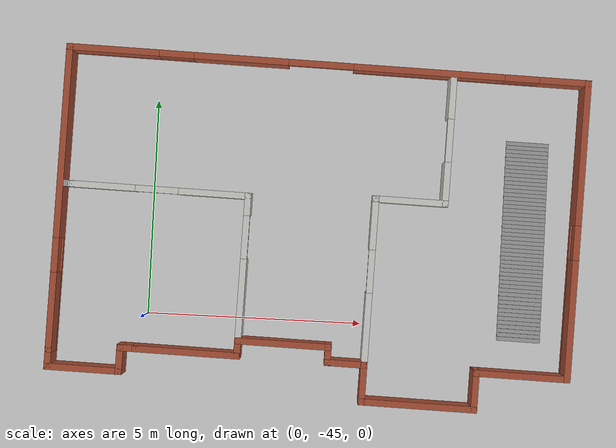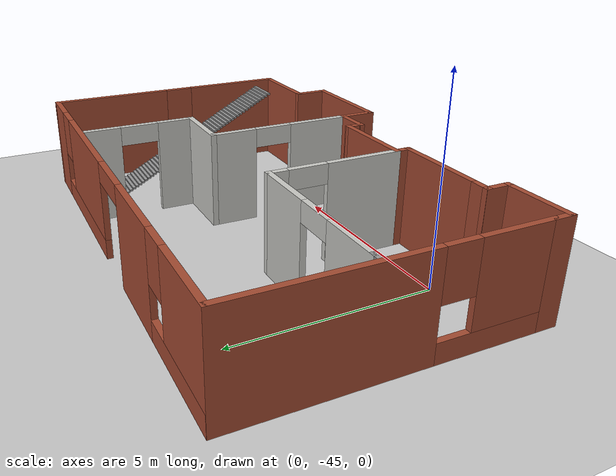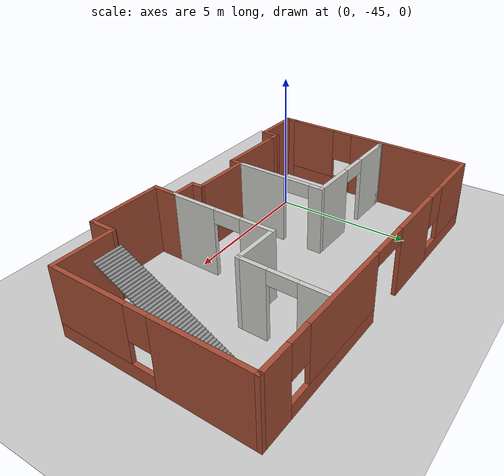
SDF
<sdf version="1.6">
 <world name="default">
  <model name="ground_plane">
   <static>1</static>
   <link name="link">
    <collision name="collision">
     <geometry><plane><normal>0 0 1</normal><size>100 100</size></plane></geometry>
     <surface><friction><ode><mu>100</mu><mu2>50</mu2></ode></friction></surface>
    </collision>
    <visual name="visual">
     <cast_shadows>0</cast_shadows>
     <geometry><plane><normal>0 0 1</normal><size>100 100</size></plane></geometry>
     <material>
      <script><uri>file://media/materials/scripts/gazebo.material</uri><name>Gazebo/Grey</name></script>
     </material>
    </visual>
   </link>
  </model>
  <model name="Multi_12_7home3_0">
   <pose>3.88175 -42.8713 0 0 -0 3.1211</pose>
   <link name="Stairs_5">
    <visual name="Stairs_5_Visual_0">
     <pose>-4.79994 -2.39706 0.025 0 0 -3.14159</pose>
     <geometry><box><size>1 0.093 0.05</size></box></geometry>
     <material>
      <script><uri>file://media/materials/scripts/gazebo.material</uri><name>Gazebo/Grey</name></script>
      <ambient>1 1 1 1</ambient>
     </material>
     <meta><layer>0</layer></meta>
    </visual>
    <collision name="Stairs_5_Collision_0">
     <geometry><box><size>1 0.093 0.05</size></box></geometry>
     <pose>-4.79994 -2.39706 0.025 0 0 -3.14159</pose>
    </collision>
    <visual name="Stairs_5_Visual_1">
     <pose>-4.79994 -2.30406 0.075 0 0 -3.14159</pose>
     <geometry><box><size>1 0.093 0.05</size></box></geometry>
     <material>
      <script><uri>file://media/materials/scripts/gazebo.material</uri><name>Gazebo/Grey</name></script>
      <ambient>1 1 1 1</ambient>
     </material>
     <meta><layer>0</layer></meta>
    </visual>
    <collision name="Stairs_5_Collision_1">
     <geometry><box><size>1 0.093 0.05</size></box></geometry>
     <pose>-4.79994 -2.30406 0.075 0 0 -3.14159</pose>
    </collision>
    <visual name="Stairs_5_Visual_2">
     <pose>-4.79994 -2.21106 0.125 0 0 -3.14159</pose>
     <geometry><box><size>1 0.093 0.05</size></box></geometry>
     <material>
      <script><uri>file://media/materials/scripts/gazebo.material</uri><name>Gazebo/Grey</name></script>
      <ambient>1 1 1 1</ambient>
     </material>
     <meta><layer>0</layer></meta>
    </visual>
    <collision name="Stairs_5_Collision_2">
     <geometry><box><size>1 0.093 0.05</size></box></geometry>
     <pose>-4.79994 -2.21106 0.125 0 0 -3.14159</pose>
    </collision>
    <visual name="Stairs_5_Visual_3">
     <pose>-4.79994 -2.11806 0.175 0 0 -3.14159</pose>
     <geometry><box><size>1 0.093 0.05</size></box></geometry>
     <material>
      <script><uri>file://media/materials/scripts/gazebo.material</uri><name>Gazebo/Grey</name></script>
      <ambient>1 1 1 1</ambient>
     </material>
     <meta><layer>0</layer></meta>
    </visual>
    <collision name="Stairs_5_Collision_3">
     <geometry><box><size>1 0.093 0.05</size></box></geometry>
     <pose>-4.79994 -2.11806 0.175 0 0 -3.14159</pose>
    </collision>
    <visual name="Stairs_5_Visual_4">
     <pose>-4.79994 -2.02506 0.225 0 0 -3.14159</pose>
     <geometry><box><size>1 0.093 0.05</size></box></geometry>
     <material>
      <script><uri>file://media/materials/scripts/gazebo.material</uri><name>Gazebo/Grey</name></script>
      <ambient>1 1 1 1</ambient>
     </material>
     <meta><layer>0</layer></meta>
    </visual>
    <collision name="Stairs_5_Collision_4">
     <geometry><box><size>1 0.093 0.05</size></box></geometry>
     <pose>-4.79994 -2.02506 0.225 0 0 -3.14159</pose>
    </collision>
    <visual name="Stairs_5_Visual_5">
     <pose>-4.79994 -1.93206 0.275 0 0 -3.14159</pose>
     <geometry><box><size>1 0.093 0.05</size></box></geometry>
     <material>
      <script><uri>file://media/materials/scripts/gazebo.material</uri><name>Gazebo/Grey</name></script>
      <ambient>1 1 1 1</ambient>
     </material>
     <meta><layer>0</layer></meta>
    </visual>
    <collision name="Stairs_5_Collision_5">
     <geometry><box><size>1 0.093 0.05</size></box></geometry>
     <pose>-4.79994 -1.93206 0.275 0 0 -3.14159</pose>
    </collision>
    <visual name="Stairs_5_Visual_6">
     <pose>-4.79994 -1.83906 0.325 0 0 -3.14159</pose>
     <geometry><box><size>1 0.093 0.05</size></box></geometry>
     <material>
      <script><uri>file://media/materials/scripts/gazebo.material</uri><name>Gazebo/Grey</name></script>
      <ambient>1 1 1 1</ambient>
     </material>
     <meta><layer>0</layer></meta>
    </visual>
    <collision name="Stairs_5_Collision_6">
     <geometry><box><size>1 0.093 0.05</size></box></geometry>
     <pose>-4.79994 -1.83906 0.325 0 0 -3.14159</pose>
    </collision>
    <visual name="Stairs_5_Visual_7">
     <pose>-4.79994 -1.74606 0.375 0 0 -3.14159</pose>
     <geometry><box><size>1 0.093 0.05</size></box></geometry>
     <material>
      <script><uri>file://media/materials/scripts/gazebo.material</uri><name>Gazebo/Grey</name></script>
      <ambient>1 1 1 1</ambient>
     </material>
     <meta><layer>0</layer></meta>
    </visual>
    <collision name="Stairs_5_Collision_7">
     <geometry><box><size>1 0.093 0.05</size></box></geometry>
     <pose>-4.79994 -1.74606 0.375 0 0 -3.14159</pose>
    </collision>
    <visual name="Stairs_5_Visual_8">
     <pose>-4.79994 -1.65306 0.425 0 0 -3.14159</pose>
     <geometry><box><size>1 0.093 0.05</size></box></geometry>
     <material>
      <script><uri>file://media/materials/scripts/gazebo.material</uri><name>Gazebo/Grey</name></script>
      <ambient>1 1 1 1</ambient>
     </material>
     <meta><layer>0</layer></meta>
    </visual>
    <collision name="Stairs_5_Collision_8">
     <geometry><box><size>1 0.093 0.05</size></box></geometry>
     <pose>-4.79994 -1.65306 0.425 0 0 -3.14159</pose>
    </collision>
    <visual name="Stairs_5_Visual_9">
     <pose>-4.79994 -1.56006 0.475 0 0 -3.14159</pose>
     <geometry><box><size>1 0.093 0.05</size></box></geometry>
     <material>
      <script><uri>file://media/materials/scripts/gazebo.material</uri><name>Gazebo/Grey</name></script>
      <ambient>1 1 1 1</ambient>
     </material>
     <meta><layer>0</layer></meta>
    </visual>
    <collision name="Stairs_5_Collision_9">
     <geometry><box><size>1 0.093 0.05</size></box></geometry>
     <pose>-4.79994 -1.56006 0.475 0 0 -3.14159</pose>
    </collision>
    <visual name="Stairs_5_Visual_10">
     <pose>-4.79994 -1.46706 0.525 0 0 -3.14159</pose>
     <geometry><box><size>1 0.093 0.05</size></box></geometry>
     <material>
      <script><uri>file://media/materials/scripts/gazebo.material</uri><name>Gazebo/Grey</name></script>
      <ambient>1 1 1 1</ambient>
     </material>
     <meta><layer>0</layer></meta>
    </visual>
    <collision name="Stairs_5_Collision_10">
     <geometry><box><size>1 0.093 0.05</size></box></geometry>
     <pose>-4.79994 -1.46706 0.525 0 0 -3.14159</pose>
    </collision>
    <visual name="Stairs_5_Visual_11">
     <pose>-4.79994 -1.37406 0.575 0 0 -3.14159</pose>
     <geometry><box><size>1 0.093 0.05</size></box></geometry>
     <material>
      <script><uri>file://media/materials/scripts/gazebo.material</uri><name>Gazebo/Grey</name></script>
      <ambient>1 1 1 1</ambient>
     </material>
     <meta><layer>0</layer></meta>
    </visual>
    <collision name="Stairs_5_Collision_11">
     <geometry><box><size>1 0.093 0.05</size></box></geometry>
     <pose>-4.79994 -1.37406 0.575 0 0 -3.14159</pose>
    </collision>
    <visual name="Stairs_5_Visual_12">
     <pose>-4.79994 -1.28106 0.625 0 0 -3.14159</pose>
     <geometry><box><size>1 0.093 0.05</size></box></geometry>
     <material>
      <script><uri>file://media/materials/scripts/gazebo.material</uri><name>Gazebo/Grey</name></script>
      <ambient>1 1 1 1</ambient>
     </material>
     <meta><layer>0</layer></meta>
    </visual>
    <collision name="Stairs_5_Collision_12">
     <geometry><box><size>1 0.093 0.05</size></box></geometry>
     <pose>-4.79994 -1.28106 0.625 0 0 -3.14159</pose>
    </collision>
    <visual name="Stairs_5_Visual_13">
     <pose>-4.79994 -1.18806 0.675 0 0 -3.14159</pose>
     <geometry><box><size>1 0.093 0.05</size></box></geometry>
     <material>
      <script><uri>file://media/materials/scripts/gazebo.material</uri><name>Gazebo/Grey</name></script>
      <ambient>1 1 1 1</ambient>
     </material>
     <meta><layer>0</layer></meta>
    </visual>
    <collision name="Stairs_5_Collision_13">
     <geometry><box><size>1 0.093 0.05</size></box></geometry>
     <pose>-4.79994 -1.18806 0.675 0 0 -3.14159</pose>
    </collision>
    <visual name="Stairs_5_Visual_14">
     <pose>-4.79994 -1.09506 0.725 0 0 -3.14159</pose>
     <geometry><box><size>1 0.093 0.05</size></box></geometry>
     <material>
      <script><uri>file://media/materials/scripts/gazebo.material</uri><name>Gazebo/Grey</name></script>
      <ambient>1 1 1 1</ambient>
     </material>
     <meta><layer>0</layer></meta>
    </visual>
    <collision name="Stairs_5_Collision_14">
     <geometry><box><size>1 0.093 0.05</size></box></geometry>
     <pose>-4.79994 -1.09506 0.725 0 0 -3.14159</pose>
    </collision>
    <visual name="Stairs_5_Visual_15">
     <pose>-4.79994 -1.00206 0.775 0 0 -3.14159</pose>
     <geometry><box><size>1 0.093 0.05</size></box></geometry>
     <material>
      <script><uri>file://media/materials/scripts/gazebo.material</uri><name>Gazebo/Grey</name></script>
      <ambient>1 1 1 1</ambient>
     </material>
     <meta><layer>0</layer></meta>
    </visual>
    <collision name="Stairs_5_Collision_15">
     <geometry><box><size>1 0.093 0.05</size></box></geometry>
     <pose>-4.79994 -1.00206 0.775 0 0 -3.14159</pose>
    </collision>
    <visual name="Stairs_5_Visual_16">
     <pose>-4.79994 -0.909056 0.825 0 0 -3.14159</pose>
     <geometry><box><size>1 0.093 0.05</size></box></geometry>
     <material>
      <script><uri>file://media/materials/scripts/gazebo.material</uri><name>Gazebo/Grey</name></script>
      <ambient>1 1 1 1</ambient>
     </material>
     <meta><layer>0</layer></meta>
    </visual>
    <collision name="Stairs_5_Collision_16">
     <geometry><box><size>1 0.093 0.05</size></box></geometry>
     <pose>-4.79994 -0.909056 0.825 0 0 -3.14159</pose>
    </collision>
    <visual name="Stairs_5_Visual_17">
     <pose>-4.79994 -0.816056 0.875 0 0 -3.14159</pose>
     <geometry><box><size>1 0.093 0.05</size></box></geometry>
     <material>
      <script><uri>file://media/materials/scripts/gazebo.material</uri><name>Gazebo/Grey</name></script>
      <ambient>1 1 1 1</ambient>
     </material>
     <meta><layer>0</layer></meta>
    </visual>
    <collision name="Stairs_5_Collision_17">
     <geometry><box><size>1 0.093 0.05</size></box></geometry>
     <pose>-4.79994 -0.816056 0.875 0 0 -3.14159</pose>
    </collision>
    <visual name="Stairs_5_Visual_18">
     <pose>-4.79994 -0.723056 0.925 0 0 -3.14159</pose>
     <geometry><box><size>1 0.093 0.05</size></box></geometry>
     <material>
      <script><uri>file://media/materials/scripts/gazebo.material</uri><name>Gazebo/Grey</name></script>
      <ambient>1 1 1 1</ambient>
     </material>
     <meta><layer>0</layer></meta>
    </visual>
    <collision name="Stairs_5_Collision_18">
     <geometry><box><size>1 0.093 0.05</size></box></geometry>
     <pose>-4.79994 -0.723056 0.925 0 0 -3.14159</pose>
    </collision>
    <visual name="Stairs_5_Visual_19">
     <pose>-4.79994 -0.630056 0.975 0 0 -3.14159</pose>
     <geometry><box><size>1 0.093 0.05</size></box></geometry>
     <material>
      <script><uri>file://media/materials/scripts/gazebo.material</uri><name>Gazebo/Grey</name></script>
      <ambient>1 1 1 1</ambient>
     </material>
     <meta><layer>0</layer></meta>
    </visual>
    <collision name="Stairs_5_Collision_19">
     <geometry><box><size>1 0.093 0.05</size></box></geometry>
     <pose>-4.79994 -0.630056 0.975 0 0 -3.14159</pose>
    </collision>
    <visual name="Stairs_5_Visual_20">
     <pose>-4.79994 -0.537056 1.025 0 0 -3.14159</pose>
     <geometry><box><size>1 0.093 0.05</size></box></geometry>
     <material>
      <script><uri>file://media/materials/scripts/gazebo.material</uri><name>Gazebo/Grey</name></script>
      <ambient>1 1 1 1</ambient>
     </material>
     <meta><layer>0</layer></meta>
    </visual>
    <collision name="Stairs_5_Collision_20">
     <geometry><box><size>1 0.093 0.05</size></box></geometry>
     <pose>-4.79994 -0.537056 1.025 0 0 -3.14159</pose>
    </collision>
    <visual name="Stairs_5_Visual_21">
     <pose>-4.79994 -0.444056 1.075 0 0 -3.14159</pose>
     <geometry><box><size>1 0.093 0.05</size></box></geometry>
     <material>
      <script><uri>file://media/materials/scripts/gazebo.material</uri><name>Gazebo/Grey</name></script>
      <ambient>1 1 1 1</ambient>
     </material>
     <meta><layer>0</layer></meta>
    </visual>
    <collision name="Stairs_5_Collision_21">
     <geometry><box><size>1 0.093 0.05</size></box></geometry>
     <pose>-4.79994 -0.444056 1.075 0 0 -3.14159</pose>
    </collision>
    <visual name="Stairs_5_Visual_22">
     <pose>-4.79994 -0.351056 1.125 0 0 -3.14159</pose>
     <geometry><box><size>1 0.093 0.05</size></box></geometry>
     <material>
      <script><uri>file://media/materials/scripts/gazebo.material</uri><name>Gazebo/Grey</name></script>
      <ambient>1 1 1 1</ambient>
     </material>
     <meta><layer>0</layer></meta>
    </visual>
    <collision name="Stairs_5_Collision_22">
     <geometry><box><size>1 0.093 0.05</size></box></geometry>
     <pose>-4.79994 -0.351056 1.125 0 0 -3.14159</pose>
    </collision>
    <visual name="Stairs_5_Visual_23">
     <pose>-4.79994 -0.258056 1.175 0 0 -3.14159</pose>
     <geometry><box><size>1 0.093 0.05</size></box></geometry>
     <material>
      <script><uri>file://media/materials/scripts/gazebo.material</uri><name>Gazebo/Grey</name></script>
      <ambient>1 1 1 1</ambient>
     </material>
     <meta><layer>0</layer></meta>
    </visual>
    <collision name="Stairs_5_Collision_23">
     <geometry><box><size>1 0.093 0.05</size></box></geometry>
     <pose>-4.79994 -0.258056 1.175 0 0 -3.14159</pose>
    </collision>
    <visual name="Stairs_5_Visual_24">
     <pose>-4.79994 -0.165056 1.225 0 0 -3.14159</pose>
     <geometry><box><size>1 0.093 0.05</size></box></geometry>
     <material>
      <script><uri>file://media/materials/scripts/gazebo.material</uri><name>Gazebo/Grey</name></script>
      <ambient>1 1 1 1</ambient>
     </material>
     <meta><layer>0</layer></meta>
    </visual>
    <collision name="Stairs_5_Collision_24">
     <geometry><box><size>1 0.093 0.05</size></box></geometry>
     <pose>-4.79994 -0.165056 1.225 0 0 -3.14159</pose>
    </collision>
    <visual name="Stairs_5_Visual_25">
     <pose>-4.79994 -0.072056 1.275 0 0 -3.14159</pose>
     <geometry><box><size>1 0.093 0.05</size></box></geometry>
     <material>
      <script><uri>file://media/materials/scripts/gazebo.material</uri><name>Gazebo/Grey</name></script>
      <ambient>1 1 1 1</ambient>
     </material>
     <meta><layer>0</layer></meta>
    </visual>
    <collision name="Stairs_5_Collision_25">
     <geometry><box><size>1 0.093 0.05</size></box></geometry>
     <pose>-4.79994 -0.072056 1.275 0 0 -3.14159</pose>
    </collision>
    <visual name="Stairs_5_Visual_26">
     <pose>-4.79994 0.020944 1.325 0 0 -3.14159</pose>
     <geometry><box><size>1 0.093 0.05</size></box></geometry>
     <material>
      <script><uri>file://media/materials/scripts/gazebo.material</uri><name>Gazebo/Grey</name></script>
      <ambient>1 1 1 1</ambient>
     </material>
     <meta><layer>0</layer></meta>
    </visual>
    <collision name="Stairs_5_Collision_26">
     <geometry><box><size>1 0.093 0.05</size></box></geometry>
     <pose>-4.79994 0.020944 1.325 0 0 -3.14159</pose>
    </collision>
    <visual name="Stairs_5_Visual_27">
     <pose>-4.79994 0.113944 1.375 0 0 -3.14159</pose>
     <geometry><box><size>1 0.093 0.05</size></box></geometry>
     <material>
      <script><uri>file://media/materials/scripts/gazebo.material</uri><name>Gazebo/Grey</name></script>
      <ambient>1 1 1 1</ambient>
     </material>
     <meta><layer>0</layer></meta>
    </visual>
    <collision name="Stairs_5_Collision_27">
     <geometry><box><size>1 0.093 0.05</size></box></geometry>
     <pose>-4.79994 0.113944 1.375 0 0 -3.14159</pose>
    </collision>
    <visual name="Stairs_5_Visual_28">
     <pose>-4.79994 0.206944 1.425 0 0 -3.14159</pose>
     <geometry><box><size>1 0.093 0.05</size></box></geometry>
     <material>
      <script><uri>file://media/materials/scripts/gazebo.material</uri><name>Gazebo/Grey</name></script>
      <ambient>1 1 1 1</ambient>
     </material>
     <meta><layer>0</layer></meta>
    </visual>
    <collision name="Stairs_5_Collision_28">
     <geometry><box><size>1 0.093 0.05</size></box></geometry>
     <pose>-4.79994 0.206944 1.425 0 0 -3.14159</pose>
    </collision>
    <visual name="Stairs_5_Visual_29">
     <pose>-4.79994 0.299944 1.475 0 0 -3.14159</pose>
     <geometry><box><size>1 0.093 0.05</size></box></geometry>
     <material>
      <script><uri>file://media/materials/scripts/gazebo.material</uri><name>Gazebo/Grey</name></script>
      <ambient>1 1 1 1</ambient>
     </material>
     <meta><layer>0</layer></meta>
    </visual>
    <collision name="Stairs_5_Collision_29">
     <geometry><box><size>1 0.093 0.05</size></box></geometry>
     <pose>-4.79994 0.299944 1.475 0 0 -3.14159</pose>
    </collision>
    <visual name="Stairs_5_Visual_30">
     <pose>-4.79994 0.392944 1.525 0 0 -3.14159</pose>
     <geometry><box><size>1 0.093 0.05</size></box></geometry>
     <material>
      <script><uri>file://media/materials/scripts/gazebo.material</uri><name>Gazebo/Grey</name></script>
      <ambient>1 1 1 1</ambient>
     </material>
     <meta><layer>0</layer></meta>
    </visual>
    <collision name="Stairs_5_Collision_30">
     <geometry><box><size>1 0.093 0.05</size></box></geometry>
     <pose>-4.79994 0.392944 1.525 0 0 -3.14159</pose>
    </collision>
    <visual name="Stairs_5_Visual_31">
     <pose>-4.79994 0.485944 1.575 0 0 -3.14159</pose>
     <geometry><box><size>1 0.093 0.05</size></box></geometry>
     <material>
      <script><uri>file://media/materials/scripts/gazebo.material</uri><name>Gazebo/Grey</name></script>
      <ambient>1 1 1 1</ambient>
     </material>
     <meta><layer>0</layer></meta>
    </visual>
    <collision name="Stairs_5_Collision_31">
     <geometry><box><size>1 0.093 0.05</size></box></geometry>
     <pose>-4.79994 0.485944 1.575 0 0 -3.14159</pose>
    </collision>
    <visual name="Stairs_5_Visual_32">
     <pose>-4.79994 0.578944 1.625 0 0 -3.14159</pose>
     <geometry><box><size>1 0.093 0.05</size></box></geometry>
     <material>
      <script><uri>file://media/materials/scripts/gazebo.material</uri><name>Gazebo/Grey</name></script>
      <ambient>1 1 1 1</ambient>
     </material>
     <meta><layer>0</layer></meta>
    </visual>
    <collision name="Stairs_5_Collision_32">
     <geometry><box><size>1 0.093 0.05</size></box></geometry>
     <pose>-4.79994 0.578944 1.625 0 0 -3.14159</pose>
    </collision>
    <visual name="Stairs_5_Visual_33">
     <pose>-4.79994 0.671944 1.675 0 0 -3.14159</pose>
     <geometry><box><size>1 0.093 0.05</size></box></geometry>
     <material>
      <script><uri>file://media/materials/scripts/gazebo.material</uri><name>Gazebo/Grey</name></script>
      <ambient>1 1 1 1</ambient>
     </material>
     <meta><layer>0</layer></meta>
    </visual>
    <collision name="Stairs_5_Collision_33">
     <geometry><box><size>1 0.093 0.05</size></box></geometry>
     <pose>-4.79994 0.671944 1.675 0 0 -3.14159</pose>
    </collision>
    <visual name="Stairs_5_Visual_34">
     <pose>-4.79994 0.764944 1.725 0 0 -3.14159</pose>
     <geometry><box><size>1 0.093 0.05</size></box></geometry>
     <material>
      <script><uri>file://media/materials/scripts/gazebo.material</uri><name>Gazebo/Grey</name></script>
      <ambient>1 1 1 1</ambient>
     </material>
     <meta><layer>0</layer></meta>
    </visual>
    <collision name="Stairs_5_Collision_34">
     <geometry><box><size>1 0.093 0.05</size></box></geometry>
     <pose>-4.79994 0.764944 1.725 0 0 -3.14159</pose>
    </collision>
    <visual name="Stairs_5_Visual_35">
     <pose>-4.79994 0.857944 1.775 0 0 -3.14159</pose>
     <geometry><box><size>1 0.093 0.05</size></box></geometry>
     <material>
      <script><uri>file://media/materials/scripts/gazebo.material</uri><name>Gazebo/Grey</name></script>
      <ambient>1 1 1 1</ambient>
     </material>
     <meta><layer>0</layer></meta>
    </visual>
    <collision name="Stairs_5_Collision_35">
     <geometry><box><size>1 0.093 0.05</size></box></geometry>
     <pose>-4.79994 0.857944 1.775 0 0 -3.14159</pose>
    </collision>
    <visual name="Stairs_5_Visual_36">
     <pose>-4.79994 0.950944 1.825 0 0 -3.14159</pose>
     <geometry><box><size>1 0.093 0.05</size></box></geometry>
     <material>
      <script><uri>file://media/materials/scripts/gazebo.material</uri><name>Gazebo/Grey</name></script>
      <ambient>1 1 1 1</ambient>
     </material>
     <meta><layer>0</layer></meta>
    </visual>
    <collision name="Stairs_5_Collision_36">
     <geometry><box><size>1 0.093 0.05</size></box></geometry>
     <pose>-4.79994 0.950944 1.825 0 0 -3.14159</pose>
    </collision>
    <visual name="Stairs_5_Visual_37">
     <pose>-4.79994 1.04394 1.875 0 0 -3.14159</pose>
     <geometry><box><size>1 0.093 0.05</size></box></geometry>
     <material>
      <script><uri>file://media/materials/scripts/gazebo.material</uri><name>Gazebo/Grey</name></script>
      <ambient>1 1 1 1</ambient>
     </material>
     <meta><layer>0</layer></meta>
    </visual>
    <collision name="Stairs_5_Collision_37">
     <geometry><box><size>1 0.093 0.05</size></box></geometry>
     <pose>-4.79994 1.04394 1.875 0 0 -3.14159</pose>
    </collision>
    <visual name="Stairs_5_Visual_38">
     <pose>-4.79994 1.13694 1.925 0 0 -3.14159</pose>
     <geometry><box><size>1 0.093 0.05</size></box></geometry>
     <material>
      <script><uri>file://media/materials/scripts/gazebo.material</uri><name>Gazebo/Grey</name></script>
      <ambient>1 1 1 1</ambient>
     </material>
     <meta><layer>0</layer></meta>
    </visual>
    <collision name="Stairs_5_Collision_38">
     <geometry><box><size>1 0.093 0.05</size></box></geometry>
     <pose>-4.79994 1.13694 1.925 0 0 -3.14159</pose>
    </collision>
    <visual name="Stairs_5_Visual_39">
     <pose>-4.79994 1.22994 1.975 0 0 -3.14159</pose>
     <geometry><box><size>1 0.093 0.05</size></box></geometry>
     <material>
      <script><uri>file://media/materials/scripts/gazebo.material</uri><name>Gazebo/Grey</name></script>
      <ambient>1 1 1 1</ambient>
     </material>
     <meta><layer>0</layer></meta>
    </visual>
    <collision name="Stairs_5_Collision_39">
     <geometry><box><size>1 0.093 0.05</size></box></geometry>
     <pose>-4.79994 1.22994 1.975 0 0 -3.14159</pose>
    </collision>
    <visual name="Stairs_5_Visual_40">
     <pose>-4.79994 1.32294 2.025 0 0 -3.14159</pose>
     <geometry><box><size>1 0.093 0.05</size></box></geometry>
     <material>
      <script><uri>file://media/materials/scripts/gazebo.material</uri><name>Gazebo/Grey</name></script>
      <ambient>1 1 1 1</ambient>
     </material>
     <meta><layer>0</layer></meta>
    </visual>
    <collision name="Stairs_5_Collision_40">
     <geometry><box><size>1 0.093 0.05</size></box></geometry>
     <pose>-4.79994 1.32294 2.025 0 0 -3.14159</pose>
    </collision>
    <visual name="Stairs_5_Visual_41">
     <pose>-4.79994 1.41594 2.075 0 0 -3.14159</pose>
     <geometry><box><size>1 0.093 0.05</size></box></geometry>
     <material>
      <script><uri>file://media/materials/scripts/gazebo.material</uri><name>Gazebo/Grey</name></script>
      <ambient>1 1 1 1</ambient>
     </material>
     <meta><layer>0</layer></meta>
    </visual>
    <collision name="Stairs_5_Collision_41">
     <geometry><box><size>1 0.093 0.05</size></box></geometry>
     <pose>-4.79994 1.41594 2.075 0 0 -3.14159</pose>
    </collision>
    <visual name="Stairs_5_Visual_42">
     <pose>-4.79994 1.50894 2.125 0 0 -3.14159</pose>
     <geometry><box><size>1 0.093 0.05</size></box></geometry>
     <material>
      <script><uri>file://media/materials/scripts/gazebo.material</uri><name>Gazebo/Grey</name></script>
      <ambient>1 1 1 1</ambient>
     </material>
     <meta><layer>0</layer></meta>
    </visual>
    <collision name="Stairs_5_Collision_42">
     <geometry><box><size>1 0.093 0.05</size></box></geometry>
     <pose>-4.79994 1.50894 2.125 0 0 -3.14159</pose>
    </collision>
    <visual name="Stairs_5_Visual_43">
     <pose>-4.79994 1.60194 2.175 0 0 -3.14159</pose>
     <geometry><box><size>1 0.093 0.05</size></box></geometry>
     <material>
      <script><uri>file://media/materials/scripts/gazebo.material</uri><name>Gazebo/Grey</name></script>
      <ambient>1 1 1 1</ambient>
     </material>
     <meta><layer>0</layer></meta>
    </visual>
    <collision name="Stairs_5_Collision_43">
     <geometry><box><size>1 0.093 0.05</size></box></geometry>
     <pose>-4.79994 1.60194 2.175 0 0 -3.14159</pose>
    </collision>
    <visual name="Stairs_5_Visual_44">
     <pose>-4.79994 1.69494 2.225 0 0 -3.14159</pose>
     <geometry><box><size>1 0.093 0.05</size></box></geometry>
     <material>
      <script><uri>file://media/materials/scripts/gazebo.material</uri><name>Gazebo/Grey</name></script>
      <ambient>1 1 1 1</ambient>
     </material>
     <meta><layer>0</layer></meta>
    </visual>
    <collision name="Stairs_5_Collision_44">
     <geometry><box><size>1 0.093 0.05</size></box></geometry>
     <pose>-4.79994 1.69494 2.225 0 0 -3.14159</pose>
    </collision>
    <visual name="Stairs_5_Visual_45">
     <pose>-4.79994 1.78794 2.275 0 0 -3.14159</pose>
     <geometry><box><size>1 0.093 0.05</size></box></geometry>
     <material>
      <script><uri>file://media/materials/scripts/gazebo.material</uri><name>Gazebo/Grey</name></script>
      <ambient>1 1 1 1</ambient>
     </material>
     <meta><layer>0</layer></meta>
    </visual>
    <collision name="Stairs_5_Collision_45">
     <geometry><box><size>1 0.093 0.05</size></box></geometry>
     <pose>-4.79994 1.78794 2.275 0 0 -3.14159</pose>
    </collision>
    <visual name="Stairs_5_Visual_46">
     <pose>-4.79994 1.88094 2.325 0 0 -3.14159</pose>
     <geometry><box><size>1 0.093 0.05</size></box></geometry>
     <material>
      <script><uri>file://media/materials/scripts/gazebo.material</uri><name>Gazebo/Grey</name></script>
      <ambient>1 1 1 1</ambient>
     </material>
     <meta><layer>0</layer></meta>
    </visual>
    <collision name="Stairs_5_Collision_46">
     <geometry><box><size>1 0.093 0.05</size></box></geometry>
     <pose>-4.79994 1.88094 2.325 0 0 -3.14159</pose>
    </collision>
    <visual name="Stairs_5_Visual_47">
     <pose>-4.79994 1.97394 2.375 0 0 -3.14159</pose>
     <geometry><box><size>1 0.093 0.05</size></box></geometry>
     <material>
      <script><uri>file://media/materials/scripts/gazebo.material</uri><name>Gazebo/Grey</name></script>
      <ambient>1 1 1 1</ambient>
     </material>
     <meta><layer>0</layer></meta>
    </visual>
    <collision name="Stairs_5_Collision_47">
     <geometry><box><size>1 0.093 0.05</size></box></geometry>
     <pose>-4.79994 1.97394 2.375 0 0 -3.14159</pose>
    </collision>
    <visual name="Stairs_5_Visual_48">
     <pose>-4.79994 2.06694 2.425 0 0 -3.14159</pose>
     <geometry><box><size>1 0.093 0.05</size></box></geometry>
     <material>
      <script><uri>file://media/materials/scripts/gazebo.material</uri><name>Gazebo/Grey</name></script>
      <ambient>1 1 1 1</ambient>
     </material>
     <meta><layer>0</layer></meta>
    </visual>
    <collision name="Stairs_5_Collision_48">
     <geometry><box><size>1 0.093 0.05</size></box></geometry>
     <pose>-4.79994 2.06694 2.425 0 0 -3.14159</pose>
    </collision>
    <visual name="Stairs_5_Visual_49">
     <pose>-4.79994 2.15994 2.475 0 0 -3.14159</pose>
     <geometry><box><size>1 0.093 0.05</size></box></geometry>
     <material>
      <script><uri>file://media/materials/scripts/gazebo.material</uri><name>Gazebo/Grey</name></script>
      <ambient>1 1 1 1</ambient>
     </material>
     <meta><layer>0</layer></meta>
    </visual>
    <collision name="Stairs_5_Collision_49">
     <geometry><box><size>1 0.093 0.05</size></box></geometry>
     <pose>-4.79994 2.15994 2.475 0 0 -3.14159</pose>
    </collision>
   </link>
   <link name="Wall_20">
    <pose>0 -3.85 0 0 -0 0</pose>
    <visual name="Wall_20_Visual_0">
     <pose>-5.47297 0 1.25 0 -0 0</pose>
     <geometry><box><size>1.20406 0.15 2.5</size></box></geometry>
     <material>
      <script><uri>file://media/materials/scripts/gazebo.material</uri><name>Gazebo/Bricks</name></script>
      <ambient>0.996078 0.47451 0.0196078 1</ambient>
     </material>
     <meta><layer>0</layer></meta>
    </visual>
    <collision name="Wall_20_Collision_0">
     <geometry><box><size>1.20406 0.15 2.5</size></box></geometry>
     <pose>-5.47297 0 1.25 0 -0 0</pose>
    </collision>
    <visual name="Wall_20_Visual_1">
     <pose>2.02955 0 1.25 0 -0 0</pose>
     <geometry><box><size>2.20541 0.15 2.5</size></box></geometry>
     <material>
      <script><uri>file://media/materials/scripts/gazebo.material</uri><name>Gazebo/Bricks</name></script>
      <ambient>0.996078 0.47451 0.0196078 1</ambient>
     </material>
     <meta><layer>0</layer></meta>
    </visual>
    <collision name="Wall_20_Collision_1">
     <geometry><box><size>2.20541 0.15 2.5</size></box></geometry>
     <pose>2.02955 0 1.25 0 -0 0</pose>
    </collision>
    <visual name="Wall_20_Visual_2">
     <pose>-2.72205 0 0.25 0 -0 0</pose>
     <geometry><box><size>4.29778 0.15 0.5</size></box></geometry>
     <material>
      <script><uri>file://media/materials/scripts/gazebo.material</uri><name>Gazebo/Bricks</name></script>
      <ambient>0.996078 0.47451 0.0196078 1</ambient>
     </material>
     <meta><layer>0</layer></meta>
    </visual>
    <collision name="Wall_20_Collision_2">
     <geometry><box><size>4.29778 0.15 0.5</size></box></geometry>
     <pose>-2.72205 0 0.25 0 -0 0</pose>
    </collision>
    <visual name="Wall_20_Visual_3">
     <pose>4.60363 0 0.25 0 -0 0</pose>
     <geometry><box><size>2.94275 0.15 0.5</size></box></geometry>
     <material>
      <script><uri>file://media/materials/scripts/gazebo.material</uri><name>Gazebo/Bricks</name></script>
      <ambient>0.996078 0.47451 0.0196078 1</ambient>
     </material>
     <meta><layer>0</layer></meta>
    </visual>
    <collision name="Wall_20_Collision_3">
     <geometry><box><size>2.94275 0.15 0.5</size></box></geometry>
     <pose>4.60363 0 0.25 0 -0 0</pose>
    </collision>
    <visual name="Wall_20_Visual_4">
     <pose>-2.32205 0 1.5 0 -0 0</pose>
     <geometry><box><size>3.49778 0.15 2</size></box></geometry>
     <material>
      <script><uri>file://media/materials/scripts/gazebo.material</uri><name>Gazebo/Bricks</name></script>
      <ambient>0.996078 0.47451 0.0196078 1</ambient>
     </material>
     <meta><layer>0</layer></meta>
    </visual>
    <collision name="Wall_20_Collision_4">
     <geometry><box><size>3.49778 0.15 2</size></box></geometry>
     <pose>-2.32205 0 1.5 0 -0 0</pose>
    </collision>
    <visual name="Wall_20_Visual_5">
     <pose>-2.32205 0 1.5 0 -0 0</pose>
     <geometry><box><size>3.49778 0.15 2</size></box></geometry>
     <material>
      <script><uri>file://media/materials/scripts/gazebo.material</uri><name>Gazebo/Bricks</name></script>
      <ambient>0.996078 0.47451 0.0196078 1</ambient>
     </material>
     <meta><layer>0</layer></meta>
    </visual>
    <collision name="Wall_20_Collision_5">
     <geometry><box><size>3.49778 0.15 2</size></box></geometry>
     <pose>-2.32205 0 1.5 0 -0 0</pose>
    </collision>
    <visual name="Wall_20_Visual_6">
     <pose>5.00363 0 1.5 0 -0 0</pose>
     <geometry><box><size>2.14275 0.15 2</size></box></geometry>
     <material>
      <script><uri>file://media/materials/scripts/gazebo.material</uri><name>Gazebo/Bricks</name></script>
      <ambient>0.996078 0.47451 0.0196078 1</ambient>
     </material>
     <meta><layer>0</layer></meta>
    </visual>
    <collision name="Wall_20_Collision_6">
     <geometry><box><size>2.14275 0.15 2</size></box></geometry>
     <pose>5.00363 0 1.5 0 -0 0</pose>
    </collision>
    <visual name="Wall_20_Visual_7">
     <pose>-4.47094 0 1.9 0 -0 0</pose>
     <geometry><box><size>0.8 0.15 1.2</size></box></geometry>
     <material>
      <script><uri>file://media/materials/scripts/gazebo.material</uri><name>Gazebo/Bricks</name></script>
      <ambient>0.996078 0.47451 0.0196078 1</ambient>
     </material>
     <meta><layer>0</layer></meta>
    </visual>
    <collision name="Wall_20_Collision_7">
     <geometry><box><size>0.8 0.15 1.2</size></box></geometry>
     <pose>-4.47094 0 1.9 0 -0 0</pose>
    </collision>
    <visual name="Wall_20_Visual_8">
     <pose>3.53225 0 1.9 0 -0 0</pose>
     <geometry><box><size>0.8 0.15 1.2</size></box></geometry>
     <material>
      <script><uri>file://media/materials/scripts/gazebo.material</uri><name>Gazebo/Bricks</name></script>
      <ambient>0.996078 0.47451 0.0196078 1</ambient>
     </material>
     <meta><layer>0</layer></meta>
    </visual>
    <collision name="Wall_20_Collision_8">
     <geometry><box><size>0.8 0.15 1.2</size></box></geometry>
     <pose>3.53225 0 1.9 0 -0 0</pose>
    </collision>
    <visual name="Wall_20_Visual_9">
     <pose>0.17684 0 2.25 0 -0 0</pose>
     <geometry><box><size>1.5 0.15 0.5</size></box></geometry>
     <material>
      <script><uri>file://media/materials/scripts/gazebo.material</uri><name>Gazebo/Bricks</name></script>
      <ambient>0.996078 0.47451 0.0196078 1</ambient>
     </material>
     <meta><layer>0</layer></meta>
    </visual>
    <collision name="Wall_20_Collision_9">
     <geometry><box><size>1.5 0.15 0.5</size></box></geometry>
     <pose>0.17684 0 2.25 0 -0 0</pose>
    </collision>
    <visual name="Wall_20_Visual_10">
     <pose>0.17684 0 2.25 0 -0 0</pose>
     <geometry><box><size>1.5 0.15 0.5</size></box></geometry>
     <material>
      <script><uri>file://media/materials/scripts/gazebo.material</uri><name>Gazebo/Bricks</name></script>
      <ambient>0.996078 0.47451 0.0196078 1</ambient>
     </material>
     <meta><layer>0</layer></meta>
    </visual>
    <collision name="Wall_20_Collision_10">
     <geometry><box><size>1.5 0.15 0.5</size></box></geometry>
     <pose>0.17684 0 2.25 0 -0 0</pose>
    </collision>
   </link>
   <link name="Wall_22">
    <pose>6 -0.35 0 0 -0 1.5708</pose>
    <visual name="Wall_22_Visual_0">
     <pose>-1.32733 0 1.25 0 -0 0</pose>
     <geometry><box><size>4.49534 0.15 2.5</size></box></geometry>
     <material>
      <script><uri>file://media/materials/scripts/gazebo.material</uri><name>Gazebo/Bricks</name></script>
      <ambient>0.996078 0.47451 0.0196078 1</ambient>
     </material>
     <meta><layer>0</layer></meta>
    </visual>
    <collision name="Wall_22_Collision_0">
     <geometry><box><size>4.49534 0.15 2.5</size></box></geometry>
     <pose>-1.32733 0 1.25 0 -0 0</pose>
    </collision>
    <visual name="Wall_22_Visual_1">
     <pose>2.24767 0 0.25 0 -0 0</pose>
     <geometry><box><size>2.65466 0.15 0.5</size></box></geometry>
     <material>
      <script><uri>file://media/materials/scripts/gazebo.material</uri><name>Gazebo/Bricks</name></script>
      <ambient>0.996078 0.47451 0.0196078 1</ambient>
     </material>
     <meta><layer>0</layer></meta>
    </visual>
    <collision name="Wall_22_Collision_1">
     <geometry><box><size>2.65466 0.15 0.5</size></box></geometry>
     <pose>2.24767 0 0.25 0 -0 0</pose>
    </collision>
    <visual name="Wall_22_Visual_2">
     <pose>2.64767 0 1.5 0 -0 0</pose>
     <geometry><box><size>1.85466 0.15 2</size></box></geometry>
     <material>
      <script><uri>file://media/materials/scripts/gazebo.material</uri><name>Gazebo/Bricks</name></script>
      <ambient>0.996078 0.47451 0.0196078 1</ambient>
     </material>
     <meta><layer>0</layer></meta>
    </visual>
    <collision name="Wall_22_Collision_2">
     <geometry><box><size>1.85466 0.15 2</size></box></geometry>
     <pose>2.64767 0 1.5 0 -0 0</pose>
    </collision>
    <visual name="Wall_22_Visual_3">
     <pose>1.32034 0 1.9 0 -0 0</pose>
     <geometry><box><size>0.8 0.15 1.2</size></box></geometry>
     <material>
      <script><uri>file://media/materials/scripts/gazebo.material</uri><name>Gazebo/Bricks</name></script>
      <ambient>0.996078 0.47451 0.0196078 1</ambient>
     </material>
     <meta><layer>0</layer></meta>
    </visual>
    <collision name="Wall_22_Collision_3">
     <geometry><box><size>0.8 0.15 1.2</size></box></geometry>
     <pose>1.32034 0 1.9 0 -0 0</pose>
    </collision>
   </link>
   <link name="Wall_24">
    <pose>-6 -0.425 0 0 -0 1.5708</pose>
    <visual name="Wall_24_Visual_0">
     <pose>-1.81903 0 1.25 0 -0 0</pose>
     <geometry><box><size>3.36194 0.15 2.5</size></box></geometry>
     <material>
      <script><uri>file://media/materials/scripts/gazebo.material</uri><name>Gazebo/Bricks</name></script>
      <ambient>0.996078 0.47451 0.0196078 1</ambient>
     </material>
     <meta><layer>0</layer></meta>
    </visual>
    <collision name="Wall_24_Collision_0">
     <geometry><box><size>3.36194 0.15 2.5</size></box></geometry>
     <pose>-1.81903 0 1.25 0 -0 0</pose>
    </collision>
    <visual name="Wall_24_Visual_1">
     <pose>1.68097 0 0.25 0 -0 0</pose>
     <geometry><box><size>3.63806 0.15 0.5</size></box></geometry>
     <material>
      <script><uri>file://media/materials/scripts/gazebo.material</uri><name>Gazebo/Bricks</name></script>
      <ambient>0.996078 0.47451 0.0196078 1</ambient>
     </material>
     <meta><layer>0</layer></meta>
    </visual>
    <collision name="Wall_24_Collision_1">
     <geometry><box><size>3.63806 0.15 0.5</size></box></geometry>
     <pose>1.68097 0 0.25 0 -0 0</pose>
    </collision>
    <visual name="Wall_24_Visual_2">
     <pose>2.08097 0 1.5 0 -0 0</pose>
     <geometry><box><size>2.83806 0.15 2</size></box></geometry>
     <material>
      <script><uri>file://media/materials/scripts/gazebo.material</uri><name>Gazebo/Bricks</name></script>
      <ambient>0.996078 0.47451 0.0196078 1</ambient>
     </material>
     <meta><layer>0</layer></meta>
    </visual>
    <collision name="Wall_24_Collision_2">
     <geometry><box><size>2.83806 0.15 2</size></box></geometry>
     <pose>2.08097 0 1.5 0 -0 0</pose>
    </collision>
    <visual name="Wall_24_Visual_3">
     <pose>0.261937 0 1.9 0 -0 0</pose>
     <geometry><box><size>0.8 0.15 1.2</size></box></geometry>
     <material>
      <script><uri>file://media/materials/scripts/gazebo.material</uri><name>Gazebo/Bricks</name></script>
      <ambient>0.996078 0.47451 0.0196078 1</ambient>
     </material>
     <meta><layer>0</layer></meta>
    </visual>
    <collision name="Wall_24_Collision_3">
     <geometry><box><size>0.8 0.15 1.2</size></box></geometry>
     <pose>0.261937 0 1.9 0 -0 0</pose>
    </collision>
   </link>
   <link name="Wall_26">
    <collision name="Wall_26_Collision">
     <geometry><box><size>2.25 0.15 2.5</size></box></geometry>
     <pose>0 0 1.25 0 -0 0</pose>
    </collision>
    <visual name="Wall_26_Visual">
     <pose>0 0 1.25 0 -0 0</pose>
     <geometry><box><size>2.25 0.15 2.5</size></box></geometry>
     <material>
      <script><uri>file://media/materials/scripts/gazebo.material</uri><name>Gazebo/Bricks</name></script>
      <ambient>0.996078 0.47451 0.0196078 1</ambient>
     </material>
     <meta><layer>0</layer></meta>
    </visual>
    <pose>-4.95 3 0 0 -0 0</pose>
   </link>
   <link name="Wall_27">
    <collision name="Wall_27_Collision">
     <geometry><box><size>1 0.15 2.5</size></box></geometry>
     <pose>0 0 1.25 0 -0 0</pose>
    </collision>
    <visual name="Wall_27_Visual">
     <pose>0 0 1.25 0 -0 0</pose>
     <geometry><box><size>1 0.15 2.5</size></box></geometry>
     <material>
      <script><uri>file://media/materials/scripts/gazebo.material</uri><name>Gazebo/Bricks</name></script>
      <ambient>0.996078 0.47451 0.0196078 1</ambient>
     </material>
     <meta><layer>0</layer></meta>
    </visual>
    <pose>-3.9 3.425 0 0 -0 1.5708</pose>
   </link>
   <link name="Wall_28">
    <collision name="Wall_28_Collision">
     <geometry><box><size>2.75 0.15 2.5</size></box></geometry>
     <pose>0 0 1.25 0 -0 0</pose>
    </collision>
    <visual name="Wall_28_Visual">
     <pose>0 0 1.25 0 -0 0</pose>
     <geometry><box><size>2.75 0.15 2.5</size></box></geometry>
     <material>
      <script><uri>file://media/materials/scripts/gazebo.material</uri><name>Gazebo/Bricks</name></script>
      <ambient>0.996078 0.47451 0.0196078 1</ambient>
     </material>
     <meta><layer>0</layer></meta>
    </visual>
    <pose>-2.6 3.85 0 0 -0 0</pose>
   </link>
   <link name="Wall_29">
    <collision name="Wall_29_Collision">
     <geometry><box><size>1 0.15 2.5</size></box></geometry>
     <pose>0 0 1.25 0 -0 0</pose>
    </collision>
    <visual name="Wall_29_Visual">
     <pose>0 0 1.25 0 -0 0</pose>
     <geometry><box><size>1 0.15 2.5</size></box></geometry>
     <material>
      <script><uri>file://media/materials/scripts/gazebo.material</uri><name>Gazebo/Bricks</name></script>
      <ambient>0.996078 0.47451 0.0196078 1</ambient>
     </material>
     <meta><layer>0</layer></meta>
    </visual>
    <pose>-1.3 3.425 0 0 -0 -1.5708</pose>
   </link>
   <link name="Wall_30">
    <collision name="Wall_30_Collision">
     <geometry><box><size>1 0.15 2.5</size></box></geometry>
     <pose>0 0 1.25 0 -0 0</pose>
    </collision>
    <visual name="Wall_30_Visual">
     <pose>0 0 1.25 0 -0 0</pose>
     <geometry><box><size>1 0.15 2.5</size></box></geometry>
     <material>
      <script><uri>file://media/materials/scripts/gazebo.material</uri><name>Gazebo/Bricks</name></script>
      <ambient>0.996078 0.47451 0.0196078 1</ambient>
     </material>
     <meta><layer>0</layer></meta>
    </visual>
    <pose>-0.875 3 0 0 -0 0</pose>
   </link>
   <link name="Wall_31">
    <collision name="Wall_31_Collision">
     <geometry><box><size>0.5 0.15 2.5</size></box></geometry>
     <pose>0 0 1.25 0 -0 0</pose>
    </collision>
    <visual name="Wall_31_Visual">
     <pose>0 0 1.25 0 -0 0</pose>
     <geometry><box><size>0.5 0.15 2.5</size></box></geometry>
     <material>
      <script><uri>file://media/materials/scripts/gazebo.material</uri><name>Gazebo/Bricks</name></script>
      <ambient>0.996078 0.47451 0.0196078 1</ambient>
     </material>
     <meta><layer>0</layer></meta>
    </visual>
    <pose>-0.45 2.825 0 0 -0 -1.5708</pose>
   </link>
   <link name="Wall_32">
    <collision name="Wall_32_Collision">
     <geometry><box><size>2.25 0.15 2.5</size></box></geometry>
     <pose>0 0 1.25 0 -0 0</pose>
    </collision>
    <visual name="Wall_32_Visual">
     <pose>0 0 1.25 0 -0 0</pose>
     <geometry><box><size>2.25 0.15 2.5</size></box></geometry>
     <material>
      <script><uri>file://media/materials/scripts/gazebo.material</uri><name>Gazebo/Bricks</name></script>
      <ambient>0.996078 0.47451 0.0196078 1</ambient>
     </material>
     <meta><layer>0</layer></meta>
    </visual>
    <pose>0.6 2.65 0 0 -0 0</pose>
   </link>
   <link name="Wall_33">
    <collision name="Wall_33_Collision">
     <geometry><box><size>0.5 0.15 2.5</size></box></geometry>
     <pose>0 0 1.25 0 -0 0</pose>
    </collision>
    <visual name="Wall_33_Visual">
     <pose>0 0 1.25 0 -0 0</pose>
     <geometry><box><size>0.5 0.15 2.5</size></box></geometry>
     <material>
      <script><uri>file://media/materials/scripts/gazebo.material</uri><name>Gazebo/Bricks</name></script>
      <ambient>0.996078 0.47451 0.0196078 1</ambient>
     </material>
     <meta><layer>0</layer></meta>
    </visual>
    <pose>1.65 2.825 0 0 -0 1.5708</pose>
   </link>
   <link name="Wall_34">
    <collision name="Wall_34_Collision">
     <geometry><box><size>2.5 0.15 2.5</size></box></geometry>
     <pose>0 0 1.25 0 -0 0</pose>
    </collision>
    <visual name="Wall_34_Visual">
     <pose>0 0 1.25 0 -0 0</pose>
     <geometry><box><size>2.5 0.15 2.5</size></box></geometry>
     <material>
      <script><uri>file://media/materials/scripts/gazebo.material</uri><name>Gazebo/Bricks</name></script>
      <ambient>0.996078 0.47451 0.0196078 1</ambient>
     </material>
     <meta><layer>0</layer></meta>
    </visual>
    <pose>2.825 3 0 0 -0 0</pose>
   </link>
   <link name="Wall_35">
    <collision name="Wall_35_Collision">
     <geometry><box><size>0.5 0.15 2.5</size></box></geometry>
     <pose>0 0 1.25 0 -0 0</pose>
    </collision>
    <visual name="Wall_35_Visual">
     <pose>0 0 1.25 0 -0 0</pose>
     <geometry><box><size>0.5 0.15 2.5</size></box></geometry>
     <material>
      <script><uri>file://media/materials/scripts/gazebo.material</uri><name>Gazebo/Bricks</name></script>
      <ambient>1 1 1 1</ambient>
     </material>
     <meta><layer>0</layer></meta>
    </visual>
    <pose>4.175 3 0 0 -0 0</pose>
   </link>
   <link name="Wall_36">
    <collision name="Wall_36_Collision">
     <geometry><box><size>0.7 0.15 2.5</size></box></geometry>
     <pose>0 0 1.25 0 -0 0</pose>
    </collision>
    <visual name="Wall_36_Visual">
     <pose>0 0 1.25 0 -0 0</pose>
     <geometry><box><size>0.7 0.15 2.5</size></box></geometry>
     <material>
      <script><uri>file://media/materials/scripts/gazebo.material</uri><name>Gazebo/Bricks</name></script>
      <ambient>0.996078 0.47451 0.0196078 1</ambient>
     </material>
     <meta><layer>0</layer></meta>
    </visual>
    <pose>4.35 3.275 0 0 -0 1.5708</pose>
   </link>
   <link name="Wall_37">
    <collision name="Wall_37_Collision">
     <geometry><box><size>1.8 0.15 2.5</size></box></geometry>
     <pose>0 0 1.25 0 -0 0</pose>
    </collision>
    <visual name="Wall_37_Visual">
     <pose>0 0 1.25 0 -0 0</pose>
     <geometry><box><size>1.8 0.15 2.5</size></box></geometry>
     <material>
      <script><uri>file://media/materials/scripts/gazebo.material</uri><name>Gazebo/Bricks</name></script>
      <ambient>0.996078 0.47451 0.0196078 1</ambient>
     </material>
     <meta><layer>0</layer></meta>
    </visual>
    <pose>5.175 3.55 0 0 -0 0</pose>
   </link>
   <link name="Wall_38">
    <collision name="Wall_38_Collision">
     <geometry><box><size>0.55 0.15 2.5</size></box></geometry>
     <pose>0 0 1.25 0 -0 0</pose>
    </collision>
    <visual name="Wall_38_Visual">
     <pose>0 0 1.25 0 -0 0</pose>
     <geometry><box><size>0.55 0.15 2.5</size></box></geometry>
     <material>
      <script><uri>file://media/materials/scripts/gazebo.material</uri><name>Gazebo/Bricks</name></script>
      <ambient>0.996078 0.47451 0.0196078 1</ambient>
     </material>
     <meta><layer>0</layer></meta>
    </visual>
    <pose>6 3.35 0 0 -0 -1.5708</pose>
   </link>
   <link name="Wall_40">
    <pose>-1.3 1.075 0 0 -0 -1.5708</pose>
    <visual name="Wall_40_Visual_0">
     <pose>-1.12828 0 1.25 0 -0 0</pose>
     <geometry><box><size>1.74345 0.15 2.5</size></box></geometry>
     <material>
      <script><uri>file://media/materials/scripts/gazebo.material</uri><name>Gazebo/CeilingTiled</name></script>
      <ambient>1 1 1 1</ambient>
     </material>
     <meta><layer>0</layer></meta>
    </visual>
    <collision name="Wall_40_Collision_0">
     <geometry><box><size>1.74345 0.15 2.5</size></box></geometry>
     <pose>-1.12828 0 1.25 0 -0 0</pose>
    </collision>
    <visual name="Wall_40_Visual_1">
     <pose>1.37172 0 1.25 0 -0 0</pose>
     <geometry><box><size>1.25655 0.15 2.5</size></box></geometry>
     <material>
      <script><uri>file://media/materials/scripts/gazebo.material</uri><name>Gazebo/CeilingTiled</name></script>
      <ambient>1 1 1 1</ambient>
     </material>
     <meta><layer>0</layer></meta>
    </visual>
    <collision name="Wall_40_Collision_1">
     <geometry><box><size>1.25655 0.15 2.5</size></box></geometry>
     <pose>1.37172 0 1.25 0 -0 0</pose>
    </collision>
    <visual name="Wall_40_Visual_2">
     <pose>0.243447 0 2.25 0 -0 0</pose>
     <geometry><box><size>1 0.15 0.5</size></box></geometry>
     <material>
      <script><uri>file://media/materials/scripts/gazebo.material</uri><name>Gazebo/CeilingTiled</name></script>
      <ambient>1 1 1 1</ambient>
     </material>
     <meta><layer>0</layer></meta>
    </visual>
    <collision name="Wall_40_Collision_2">
     <geometry><box><size>1 0.15 0.5</size></box></geometry>
     <pose>0.243447 0 2.25 0 -0 0</pose>
    </collision>
   </link>
   <link name="Wall_41">
    <collision name="Wall_41_Collision">
     <geometry><box><size>1.75 0.15 2.5</size></box></geometry>
     <pose>0 0 1.25 0 -0 0</pose>
    </collision>
    <visual name="Wall_41_Visual">
     <pose>0 0 1.25 0 -0 0</pose>
     <geometry><box><size>1.75 0.15 2.5</size></box></geometry>
     <material>
      <script><uri>file://media/materials/scripts/gazebo.material</uri><name>Gazebo/CeilingTiled</name></script>
      <ambient>1 1 1 1</ambient>
     </material>
     <meta><layer>0</layer></meta>
    </visual>
    <pose>-2.1 -0.85 0 0 -0 3.14159</pose>
   </link>
   <link name="Wall_42">
    <pose>-2.9 -2.275 0 0 -0 -1.5708</pose>
    <visual name="Wall_42_Visual_0">
     <pose>-0.980395 0 1.25 0 -0 0</pose>
     <geometry><box><size>1.03921 0.15 2.5</size></box></geometry>
     <material>
      <script><uri>file://media/materials/scripts/gazebo.material</uri><name>Gazebo/CeilingTiled</name></script>
      <ambient>1 1 1 1</ambient>
     </material>
     <meta><layer>0</layer></meta>
    </visual>
    <collision name="Wall_42_Collision_0">
     <geometry><box><size>1.03921 0.15 2.5</size></box></geometry>
     <pose>-0.980395 0 1.25 0 -0 0</pose>
    </collision>
    <visual name="Wall_42_Visual_1">
     <pose>1.01961 0 1.25 0 -0 0</pose>
     <geometry><box><size>0.960791 0.15 2.5</size></box></geometry>
     <material>
      <script><uri>file://media/materials/scripts/gazebo.material</uri><name>Gazebo/CeilingTiled</name></script>
      <ambient>1 1 1 1</ambient>
     </material>
     <meta><layer>0</layer></meta>
    </visual>
    <collision name="Wall_42_Collision_1">
     <geometry><box><size>0.960791 0.15 2.5</size></box></geometry>
     <pose>1.01961 0 1.25 0 -0 0</pose>
    </collision>
    <visual name="Wall_42_Visual_2">
     <pose>0.039209 0 2.25 0 -0 0</pose>
     <geometry><box><size>1 0.15 0.5</size></box></geometry>
     <material>
      <script><uri>file://media/materials/scripts/gazebo.material</uri><name>Gazebo/CeilingTiled</name></script>
      <ambient>1 1 1 1</ambient>
     </material>
     <meta><layer>0</layer></meta>
    </visual>
    <collision name="Wall_42_Collision_2">
     <geometry><box><size>1 0.15 0.5</size></box></geometry>
     <pose>0.039209 0 2.25 0 -0 0</pose>
    </collision>
   </link>
   <link name="Wall_44">
    <pose>1.65 0.975 0 0 -0 -1.5708</pose>
    <visual name="Wall_44_Visual_0">
     <pose>-0.764144 0 1.25 0 -0 0</pose>
     <geometry><box><size>1.97171 0.15 2.5</size></box></geometry>
     <material>
      <script><uri>file://media/materials/scripts/gazebo.material</uri><name>Gazebo/CeilingTiled</name></script>
      <ambient>1 1 1 1</ambient>
     </material>
     <meta><layer>0</layer></meta>
    </visual>
    <collision name="Wall_44_Collision_0">
     <geometry><box><size>1.97171 0.15 2.5</size></box></geometry>
     <pose>-0.764144 0 1.25 0 -0 0</pose>
    </collision>
    <visual name="Wall_44_Visual_1">
     <pose>1.48586 0 1.25 0 -0 0</pose>
     <geometry><box><size>0.528288 0.15 2.5</size></box></geometry>
     <material>
      <script><uri>file://media/materials/scripts/gazebo.material</uri><name>Gazebo/CeilingTiled</name></script>
      <ambient>1 1 1 1</ambient>
     </material>
     <meta><layer>0</layer></meta>
    </visual>
    <collision name="Wall_44_Collision_1">
     <geometry><box><size>0.528288 0.15 2.5</size></box></geometry>
     <pose>1.48586 0 1.25 0 -0 0</pose>
    </collision>
    <visual name="Wall_44_Visual_2">
     <pose>0.721712 0 2.25 0 -0 0</pose>
     <geometry><box><size>1 0.15 0.5</size></box></geometry>
     <material>
      <script><uri>file://media/materials/scripts/gazebo.material</uri><name>Gazebo/CeilingTiled</name></script>
      <ambient>1 1 1 1</ambient>
     </material>
     <meta><layer>0</layer></meta>
    </visual>
    <collision name="Wall_44_Collision_2">
     <geometry><box><size>1 0.15 0.5</size></box></geometry>
     <pose>0.721712 0 2.25 0 -0 0</pose>
    </collision>
   </link>
   <link name="Wall_45">
    <pose>3.7 -0.7 0 0 -0 0</pose>
    <visual name="Wall_45_Visual_0">
     <pose>-1.28072 0 1.25 0 -0 0</pose>
     <geometry><box><size>1.68856 0.15 2.5</size></box></geometry>
     <material>
      <script><uri>file://media/materials/scripts/gazebo.material</uri><name>Gazebo/CeilingTiled</name></script>
      <ambient>1 1 1 1</ambient>
     </material>
     <meta><layer>0</layer></meta>
    </visual>
    <collision name="Wall_45_Collision_0">
     <geometry><box><size>1.68856 0.15 2.5</size></box></geometry>
     <pose>-1.28072 0 1.25 0 -0 0</pose>
    </collision>
    <visual name="Wall_45_Visual_1">
     <pose>1.34428 0 1.25 0 -0 0</pose>
     <geometry><box><size>1.56144 0.15 2.5</size></box></geometry>
     <material>
      <script><uri>file://media/materials/scripts/gazebo.material</uri><name>Gazebo/CeilingTiled</name></script>
      <ambient>1 1 1 1</ambient>
     </material>
     <meta><layer>0</layer></meta>
    </visual>
    <collision name="Wall_45_Collision_1">
     <geometry><box><size>1.56144 0.15 2.5</size></box></geometry>
     <pose>1.34428 0 1.25 0 -0 0</pose>
    </collision>
    <visual name="Wall_45_Visual_2">
     <pose>0.063558 0 2.25 0 -0 0</pose>
     <geometry><box><size>1 0.15 0.5</size></box></geometry>
     <material>
      <script><uri>file://media/materials/scripts/gazebo.material</uri><name>Gazebo/CeilingTiled</name></script>
      <ambient>1 1 1 1</ambient>
     </material>
     <meta><layer>0</layer></meta>
    </visual>
    <collision name="Wall_45_Collision_2">
     <geometry><box><size>1 0.15 0.5</size></box></geometry>
     <pose>0.063558 0 2.25 0 -0 0</pose>
    </collision>
   </link>
   <link name="Wall_46">
    <collision name="Wall_46_Collision">
     <geometry><box><size>0.25 0.15 2.5</size></box></geometry>
     <pose>0 0 1.25 0 -0 0</pose>
    </collision>
    <visual name="Wall_46_Visual">
     <pose>0 0 1.25 0 -0 0</pose>
     <geometry><box><size>0.25 0.15 2.5</size></box></geometry>
     <material>
      <script><uri>file://media/materials/scripts/gazebo.material</uri><name>Gazebo/Grey</name></script>
      <ambient>1 1 1 1</ambient>
     </material>
     <meta><layer>0</layer></meta>
    </visual>
    <pose>5.8 -0.7 0 0 -0 0</pose>
   </link>
   <static>1</static>
  </model>
 </world>
</sdf>
